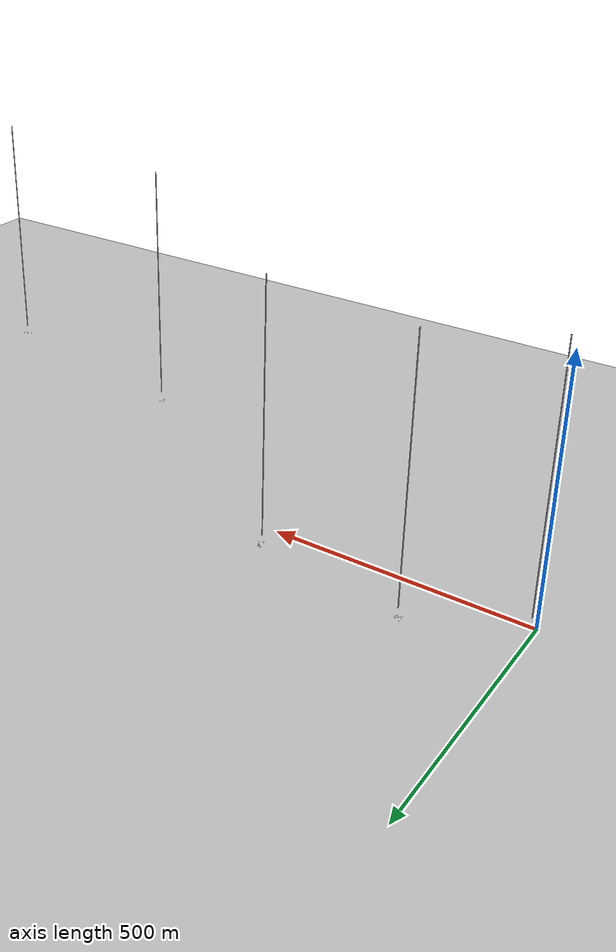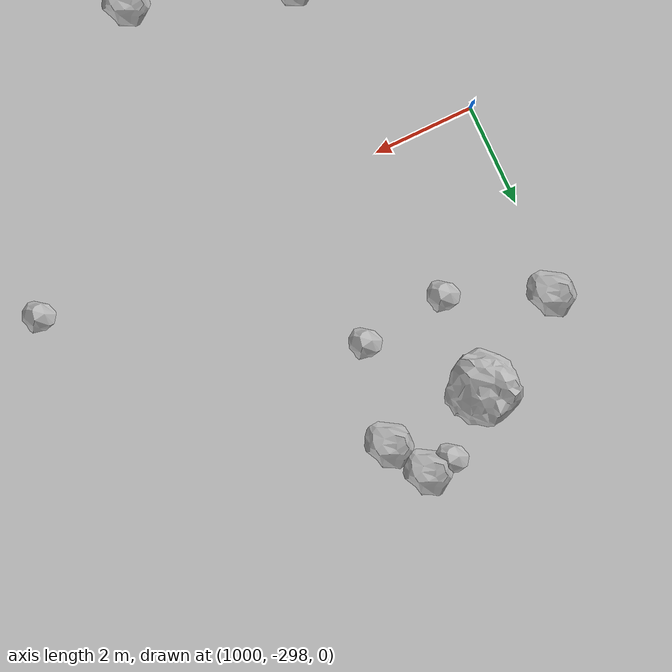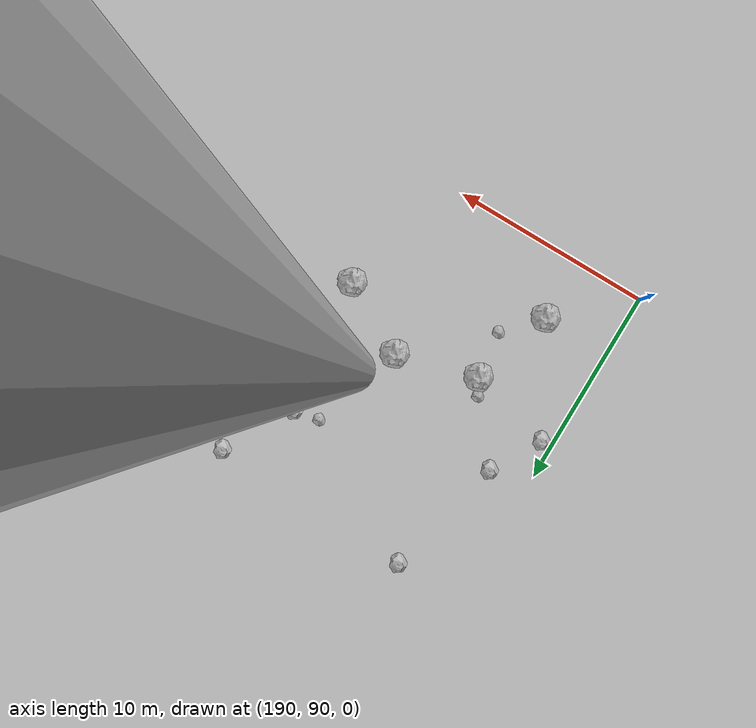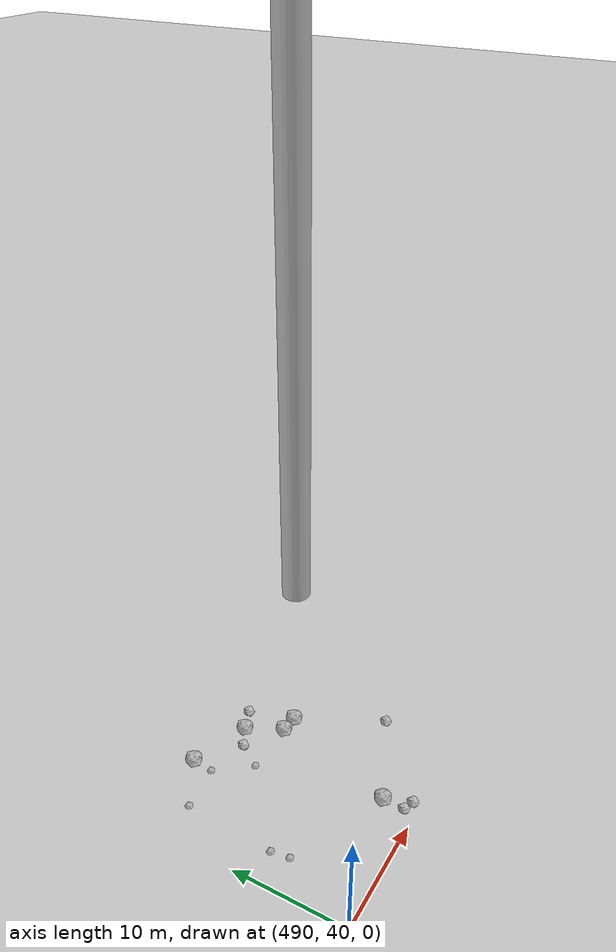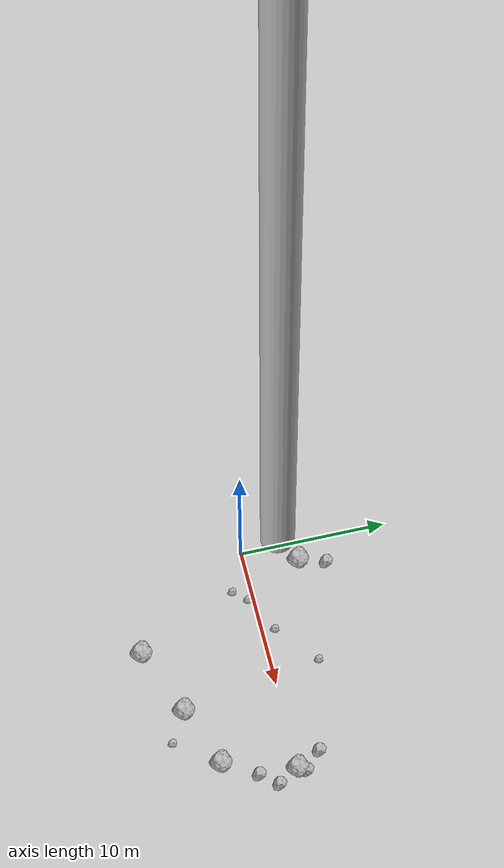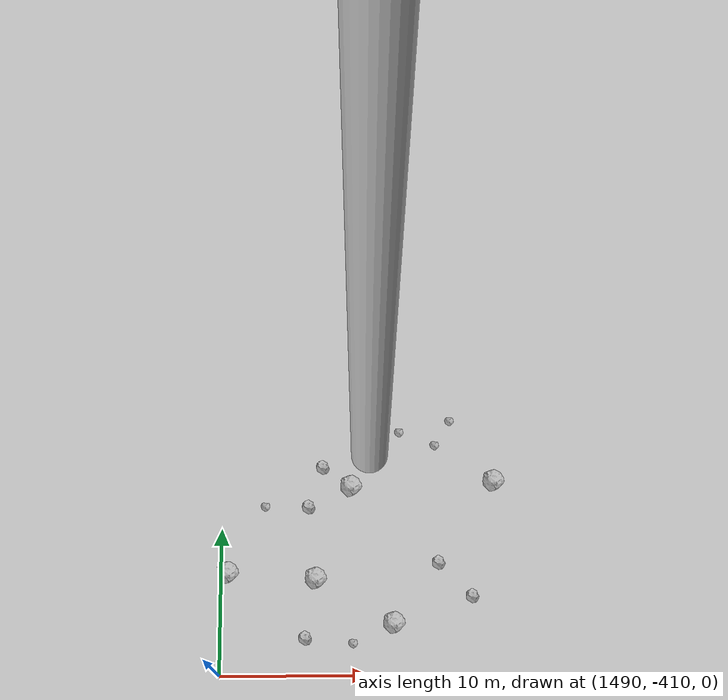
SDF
<?xml version="1.0" ?>
<sdf version="1.6">
  <world name="default">

    <include>
      <uri>model://custom_ground</uri>
    </include>

    <include>
      <uri>model://sun</uri>
    </include>

    <spherical_coordinates>
      <surface_model>EARTH_WGS84</surface_model>
      <latitude_deg>38.161479</latitude_deg>
      <longitude_deg>-122.454630</longitude_deg>
      <elevation>488.0</elevation>
      <heading_deg>90</heading_deg>
    </spherical_coordinates>

    <model name="rock1_0_0">
      <include>
        <uri>model://rock1</uri>
        <pose>16.218072722244685 -0.07538729871063232 0.5 0 0 0</pose>
      </include>
    </model>
    <model name="rock1_0_1">
      <include>
        <uri>model://rock1</uri>
        <pose>1.4830230617343543 3.6105355297588666 0.5 0 0 0</pose>
      </include>
    </model>
    <model name="rock1_0_2">
      <include>
        <uri>model://rock1</uri>
        <pose>5.9265116552671255 -8.16933289022245 0.5 0 0 0</pose>
      </include>
    </model>
    <model name="rock1_0_3">
      <include>
        <uri>model://rock1</uri>
        <pose>10.601643866343455 -6.334724791416894 0.5 0 0 0</pose>
      </include>
    </model>
    <model name="rock1_0_4">
      <include>
        <uri>model://rock1</uri>
        <pose>14.743242701911807 -4.802325454444087 0.5 0 0 0</pose>
      </include>
    </model>
    <model name="rock2_0_0">
      <include>
        <uri>model://rock2</uri>
        <pose>16.012386381209044 -2.5673386088788934 0.3 0 0 0</pose>
      </include>
    </model>
    <model name="rock2_0_1">
      <include>
        <uri>model://rock2</uri>
        <pose>15.28853134518432 1.584587554869298 0.3 0 0 0</pose>
      </include>
    </model>
    <model name="rock2_0_2">
      <include>
        <uri>model://rock2</uri>
        <pose>2.014166464424272 5.428559538764148 0.3 0 0 0</pose>
      </include>
    </model>
    <model name="rock2_0_3">
      <include>
        <uri>model://rock2</uri>
        <pose>16.441059339310723 0.47135729214152633 0.3 0 0 0</pose>
      </include>
    </model>
    <model name="rock2_0_4">
      <include>
        <uri>model://rock2</uri>
        <pose>16.95501895690824 -1.4431388229218385 0.3 0 0 0</pose>
      </include>
    </model>
    <model name="rock3_0_0">
      <include>
        <uri>model://rock3</uri>
        <pose>3.563736017023529 -0.39259256809460474 0.2 0 0 0</pose>
      </include>
    </model>
    <model name="rock3_0_1">
      <include>
        <uri>model://rock3</uri>
        <pose>12.582110191655087 -7.5453241151661405 0.2 0 0 0</pose>
      </include>
    </model>
    <model name="rock3_0_2">
      <include>
        <uri>model://rock3</uri>
        <pose>2.7544713473361093 -1.290730625760565 0.2 0 0 0</pose>
      </include>
    </model>
    <model name="rock3_0_3">
      <include>
        <uri>model://rock3</uri>
        <pose>8.943916995368104 3.1464983229804826 0.2 0 0 0</pose>
      </include>
    </model>
    <model name="rock3_0_4">
      <include>
        <uri>model://rock3</uri>
        <pose>6.086720185487167 0.8499146290101667 0.2 0 0 0</pose>
      </include>
    </model>
    <model name="rock1_1_0">
      <include>
        <uri>model://rock1</uri>
        <pose>193.49694810372836 93.09090909160467 0.5 0 0 0</pose>
      </include>
    </model>
    <model name="rock1_1_1">
      <include>
        <uri>model://rock1</uri>
        <pose>198.89346047823625 98.33190742237356 0.5 0 0 0</pose>
      </include>
    </model>
    <model name="rock1_1_2">
      <include>
        <uri>model://rock1</uri>
        <pose>202.43149880199317 96.4140640972335 0.5 0 0 0</pose>
      </include>
    </model>
    <model name="rock1_1_3">
      <include>
        <uri>model://rock1</uri>
        <pose>194.82252537573316 97.22318897916172 0.5 0 0 0</pose>
      </include>
    </model>
    <model name="rock1_1_4">
      <include>
        <uri>model://rock1</uri>
        <pose>203.86388422535444 102.74632544431854 0.5 0 0 0</pose>
      </include>
    </model>
    <model name="rock2_1_0">
      <include>
        <uri>model://rock2</uri>
        <pose>203.66135806356758 106.61363960385836 0.3 0 0 0</pose>
      </include>
    </model>
    <model name="rock2_1_1">
      <include>
        <uri>model://rock2</uri>
        <pose>193.50896633477953 106.99057643376742 0.3 0 0 0</pose>
      </include>
    </model>
    <model name="rock2_1_2">
      <include>
        <uri>model://rock2</uri>
        <pose>190.58762171800979 98.32896920875423 0.3 0 0 0</pose>
      </include>
    </model>
    <model name="rock2_1_3">
      <include>
        <uri>model://rock2</uri>
        <pose>201.6543215796032 103.19503329017101 0.3 0 0 0</pose>
      </include>
    </model>
    <model name="rock2_1_4">
      <include>
        <uri>model://rock2</uri>
        <pose>192.0268431678757 100.83675024362144 0.3 0 0 0</pose>
      </include>
    </model>
    <model name="rock3_1_0">
      <include>
        <uri>model://rock3</uri>
        <pose>200.35168488415283 102.9509002534995 0.2 0 0 0</pose>
      </include>
    </model>
    <model name="rock3_1_1">
      <include>
        <uri>model://rock3</uri>
        <pose>194.32399316023685 98.01707270670543 0.2 0 0 0</pose>
      </include>
    </model>
    <model name="rock3_1_2">
      <include>
        <uri>model://rock3</uri>
        <pose>204.75068200657677 99.03340307694589 0.2 0 0 0</pose>
      </include>
    </model>
    <model name="rock3_1_3">
      <include>
        <uri>model://rock3</uri>
        <pose>195.05106479042573 94.84440179595161 0.2 0 0 0</pose>
      </include>
    </model>
    <model name="rock3_1_4">
      <include>
        <uri>model://rock3</uri>
        <pose>207.32302637730004 106.18576600434957 0.2 0 0 0</pose>
      </include>
    </model>
    <model name="rock1_2_0">
      <include>
        <uri>model://rock1</uri>
        <pose>505.37244398371746 53.47075040430458 0.5 0 0 0</pose>
      </include>
    </model>
    <model name="rock1_2_1">
      <include>
        <uri>model://rock1</uri>
        <pose>503.8388630207934 53.60260907711954 0.5 0 0 0</pose>
      </include>
    </model>
    <model name="rock1_2_2">
      <include>
        <uri>model://rock1</uri>
        <pose>501.4404792135846 42.865446878488015 0.5 0 0 0</pose>
      </include>
    </model>
    <model name="rock1_2_3">
      <include>
        <uri>model://rock1</uri>
        <pose>502.2797517432392 56.6368869894624 0.5 0 0 0</pose>
      </include>
    </model>
    <model name="rock1_2_4">
      <include>
        <uri>model://rock1</uri>
        <pose>497.1644638093692 58.4667383239561 0.5 0 0 0</pose>
      </include>
    </model>
    <model name="rock2_2_0">
      <include>
        <uri>model://rock2</uri>
        <pose>509.1032979214618 46.30454422521819 0.3 0 0 0</pose>
      </include>
    </model>
    <model name="rock2_2_1">
      <include>
        <uri>model://rock2</uri>
        <pose>504.14337213992115 57.45640073283863 0.3 0 0 0</pose>
      </include>
    </model>
    <model name="rock2_2_2">
      <include>
        <uri>model://rock2</uri>
        <pose>502.3183636768859 40.613726128716934 0.3 0 0 0</pose>
      </include>
    </model>
    <model name="rock2_2_3">
      <include>
        <uri>model://rock2</uri>
        <pose>500.60392737788317 55.78791589898345 0.3 0 0 0</pose>
      </include>
    </model>
    <model name="rock2_2_4">
      <include>
        <uri>model://rock2</uri>
        <pose>501.3675548606813 40.97620557283667 0.3 0 0 0</pose>
      </include>
    </model>
    <model name="rock3_2_0">
      <include>
        <uri>model://rock3</uri>
        <pose>493.12574926263534 56.17279110033911 0.2 0 0 0</pose>
      </include>
    </model>
    <model name="rock3_2_1">
      <include>
        <uri>model://rock3</uri>
        <pose>492.95284429462714 46.633117606214334 0.2 0 0 0</pose>
      </include>
    </model>
    <model name="rock3_2_2">
      <include>
        <uri>model://rock3</uri>
        <pose>492.7130915301775 48.23549710014302 0.2 0 0 0</pose>
      </include>
    </model>
    <model name="rock3_2_3">
      <include>
        <uri>model://rock3</uri>
        <pose>499.23199399368417 53.69646010066572 0.2 0 0 0</pose>
      </include>
    </model>
    <model name="rock3_2_4">
      <include>
        <uri>model://rock3</uri>
        <pose>496.97548652235275 56.63860585653468 0.2 0 0 0</pose>
      </include>
    </model>
    <model name="rock1_3_0">
      <include>
        <uri>model://rock1</uri>
        <pose>1000.3181035565533 -309.47154013389564 0.5 0 0 0</pose>
      </include>
    </model>
    <model name="rock1_3_1">
      <include>
        <uri>model://rock1</uri>
        <pose>992.1010621201742 -305.8386523440902 0.5 0 0 0</pose>
      </include>
    </model>
    <model name="rock1_3_2">
      <include>
        <uri>model://rock1</uri>
        <pose>992.2918337230791 -293.9404668145105 0.5 0 0 0</pose>
      </include>
    </model>
    <model name="rock1_3_3">
      <include>
        <uri>model://rock1</uri>
        <pose>997.1904460030642 -303.9176881249078 0.5 0 0 0</pose>
      </include>
    </model>
    <model name="rock1_3_4">
      <include>
        <uri>model://rock1</uri>
        <pose>1002.1369254059372 -293.0782504715659 0.5 0 0 0</pose>
      </include>
    </model>
    <model name="rock2_3_0">
      <include>
        <uri>model://rock2</uri>
        <pose>1003.7316905979242 -292.08333330771285 0.3 0 0 0</pose>
      </include>
    </model>
    <model name="rock2_3_1">
      <include>
        <uri>model://rock2</uri>
        <pose>1000.1481298767909 -294.13882457685213 0.3 0 0 0</pose>
      </include>
    </model>
    <model name="rock2_3_2">
      <include>
        <uri>model://rock2</uri>
        <pose>1002.0642023862038 -301.5984522108909 0.3 0 0 0</pose>
      </include>
    </model>
    <model name="rock2_3_3">
      <include>
        <uri>model://rock2</uri>
        <pose>1005.0867217821865 -302.6105241083698 0.3 0 0 0</pose>
      </include>
    </model>
    <model name="rock2_3_4">
      <include>
        <uri>model://rock2</uri>
        <pose>1004.17647671148 -292.8649522565405 0.3 0 0 0</pose>
      </include>
    </model>
    <model name="rock3_3_0">
      <include>
        <uri>model://rock3</uri>
        <pose>1003.7425863772446 -294.83495503506447 0.2 0 0 0</pose>
      </include>
    </model>
    <model name="rock3_3_1">
      <include>
        <uri>model://rock3</uri>
        <pose>994.6032474563718 -301.34206166853556 0.2 0 0 0</pose>
      </include>
    </model>
    <model name="rock3_3_2">
      <include>
        <uri>model://rock3</uri>
        <pose>1003.199578316454 -292.13679406613034 0.2 0 0 0</pose>
      </include>
    </model>
    <model name="rock3_3_3">
      <include>
        <uri>model://rock3</uri>
        <pose>1009.1364239427279 -297.96379188195226 0.2 0 0 0</pose>
      </include>
    </model>
    <model name="rock3_3_4">
      <include>
        <uri>model://rock3</uri>
        <pose>1002.0130702863531 -295.01023829531164 0.2 0 0 0</pose>
      </include>
    </model>
    <model name="rock1_4_0">
      <include>
        <uri>model://rock1</uri>
        <pose>1496.45839344891 -403.461124273419 0.5 0 0 0</pose>
      </include>
    </model>
    <model name="rock1_4_1">
      <include>
        <uri>model://rock1</uri>
        <pose>1498.8702738703416 -397.0651814096671 0.5 0 0 0</pose>
      </include>
    </model>
    <model name="rock1_4_2">
      <include>
        <uri>model://rock1</uri>
        <pose>1501.7445023807772 -406.50113619302397 0.5 0 0 0</pose>
      </include>
    </model>
    <model name="rock1_4_3">
      <include>
        <uri>model://rock1</uri>
        <pose>1508.6863350906 -396.7269232317736 0.5 0 0 0</pose>
      </include>
    </model>
    <model name="rock1_4_4">
      <include>
        <uri>model://rock1</uri>
        <pose>1490.4909774324258 -403.0494112700151 0.5 0 0 0</pose>
      </include>
    </model>
    <model name="rock2_4_0">
      <include>
        <uri>model://rock2</uri>
        <pose>1507.0528617028804 -404.69013686526614 0.3 0 0 0</pose>
      </include>
    </model>
    <model name="rock2_4_1">
      <include>
        <uri>model://rock2</uri>
        <pose>1496.905965528544 -395.6894474014084 0.3 0 0 0</pose>
      </include>
    </model>
    <model name="rock2_4_2">
      <include>
        <uri>model://rock2</uri>
        <pose>1495.738933524191 -407.49642344687794 0.3 0 0 0</pose>
      </include>
    </model>
    <model name="rock2_4_3">
      <include>
        <uri>model://rock2</uri>
        <pose>1504.8059479223652 -402.3937442286986 0.3 0 0 0</pose>
      </include>
    </model>
    <model name="rock2_4_4">
      <include>
        <uri>model://rock2</uri>
        <pose>1495.936653756766 -398.4953259963846 0.3 0 0 0</pose>
      </include>
    </model>
    <model name="rock3_4_0">
      <include>
        <uri>model://rock3</uri>
        <pose>1498.9423950822816 -407.87307221206606 0.2 0 0 0</pose>
      </include>
    </model>
    <model name="rock3_4_1">
      <include>
        <uri>model://rock3</uri>
        <pose>1505.7179574289198 -392.4072113064594 0.2 0 0 0</pose>
      </include>
    </model>
    <model name="rock3_4_2">
      <include>
        <uri>model://rock3</uri>
        <pose>1502.1991033380884 -393.2021883001841 0.2 0 0 0</pose>
      </include>
    </model>
    <model name="rock3_4_3">
      <include>
        <uri>model://rock3</uri>
        <pose>1504.6524704219155 -394.14554601147086 0.2 0 0 0</pose>
      </include>
    </model>
    <model name="rock3_4_4">
      <include>
        <uri>model://rock3</uri>
        <pose>1492.952121236494 -398.462800682836 0.2 0 0 0</pose>
      </include>
    </model>

    <model name="cylinder_1">
      <static>true</static>
      <link name="link">
        <visual name="visual">
          <geometry>
            <cylinder>
              <radius>1</radius>
              <length>500</length>
            </cylinder>
          </geometry>
        </visual>
      </link>
      <pose>10 0 270 0 0 0</pose>
    </model>

    <model name="cylinder_2">
      <static>true</static>
      <link name="link">
        <visual name="visual">
          <geometry>
            <cylinder>
              <radius>1</radius>
              <length>500</length>
            </cylinder>
          </geometry>
        </visual>
      </link>
      <pose>200 100 270 0 0 0</pose>
    </model>

    <model name="cylinder_3">
      <static>true</static>
      <link name="link">
        <visual name="visual">
          <geometry>
            <cylinder>
              <radius>1</radius>
              <length>500</length>
            </cylinder>
          </geometry>
        </visual>
      </link>
      <pose>500 50 270 0 0 0</pose>
    </model>

    <model name="cylinder_4">
      <static>true</static>
      <link name="link">
        <visual name="visual">
          <geometry>
            <cylinder>
              <radius>1</radius>
              <length>500</length>
            </cylinder>
          </geometry>
        </visual>
      </link>
      <pose>1000 -300 270 0 0 0</pose>
    </model>

    <model name="cylinder_5">
      <static>true</static>
      <link name="link">
        <visual name="visual">
          <geometry>
            <cylinder>
              <radius>1</radius>
              <length>500</length>
            </cylinder>
          </geometry>
        </visual>
      </link>
      <pose>1500 -400 270 0 0 0</pose>
    </model>

  </world>
</sdf>

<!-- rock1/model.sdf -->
<sdf version="1.6">
  <model name="rock1">
    <static>true</static> <!-- Set to true if the model should not move -->
    <pose>0 0 0 0 0 0</pose>

    <!--z offset is 0.5 for full scale-->

    <link name="link">
      <collision name="rock1_collision">
        <geometry>
          <mesh>
            <uri>model://meshes/rock1.dae</uri>
          </mesh>
        </geometry>
      </collision>
      <visual name="rock1_visual">
        <geometry>
          <mesh>
            <uri>model://meshes/rock1.dae</uri>
          </mesh>
        </geometry>
        <material>
          <script>
            <uri>model://materials/scripts/sand_pebbles.material</uri>
            <name>custom_ground/Image</name>
          </script>
        </material>
      </visual>
    </link>
  </model>
</sdf>

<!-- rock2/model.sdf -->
<sdf version="1.6">
  <model name="rock2">
    <static>true</static> <!-- Set to true if the model should not move -->
    <pose>0 0 0 0 0 0</pose>

    <!--z offset is 0.3 for full scale-->

    <link name="link">
      <collision name="rock2_collision">
        <geometry>
          <mesh>
            <uri>model://meshes/rock2.dae</uri>
          </mesh>
        </geometry>
      </collision>
      <visual name="rock2_visual">
        <geometry>
          <mesh>
            <uri>model://meshes/rock2.dae</uri>
          </mesh>
        </geometry>
        <material>
          <script>
            <uri>model://materials/scripts/sand_pebbles.material</uri>
            <name>custom_ground/Image</name>
          </script>
        </material>
      </visual>
    </link>
  </model>
</sdf>

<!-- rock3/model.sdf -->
<sdf version="1.6">
  <model name="rock3">
    <static>true</static> <!-- Set to true if the model should not move -->
    <pose>0 0 0 0 0 0</pose>

    <!--z offset is 0.2 for full scale-->

    <link name="link">
      <collision name="rock3_collision">
        <geometry>
          <mesh>
            <uri>model://meshes/rock3.dae</uri>
          </mesh>
        </geometry>
      </collision>
      <visual name="rock3_visual">
        <geometry>
          <mesh>
            <uri>model://meshes/rock3.dae</uri>
          </mesh>
        </geometry>
        <material>
          <script>
            <uri>model://materials/scripts/sand_pebbles.material</uri>
            <name>custom_ground/Image</name>
          </script>
        </material>
      </visual>
    </link>
  </model>
</sdf>

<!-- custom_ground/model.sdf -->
<sdf version="1.6">
  <model name="custom_ground">
    <static>true</static> <!-- Ground is static and immovable -->
    <link name="ground_link">
      <pose>240 0 0 0 0 0</pose> <!-- Position and orientation relative to the world -->
      <!-- Visual Representation -->
      <visual name="ground_visual">
        <geometry>
          <plane>
            <normal>0 0 1</normal> <!-- Upward facing plane -->
            <size>500 500</size> <!-- Size of the plane -->
          </plane>
        </geometry>
        <material>
          <script>
            <uri>model://materials/scripts/sand_pebbles.material</uri>
            <name>custom_ground/Image</name>
          </script>
        </material>
      </visual>

      <!-- Collision Representation -->
      <collision name="ground_collision">
        <geometry>
          <plane>
            <normal>0 0 1</normal>
            <size>100 100</size>
          </plane>
        </geometry>
      </collision>

    </link>
  </model>
</sdf>
